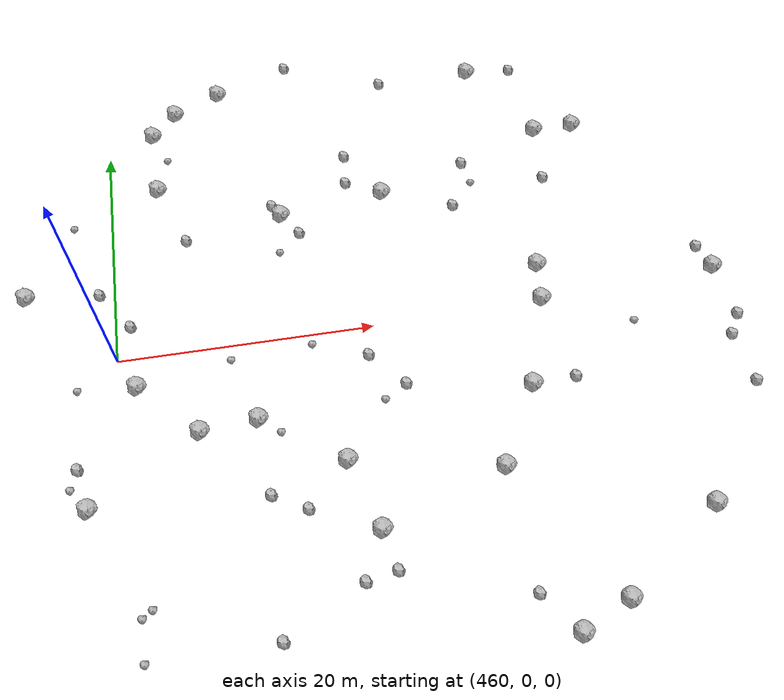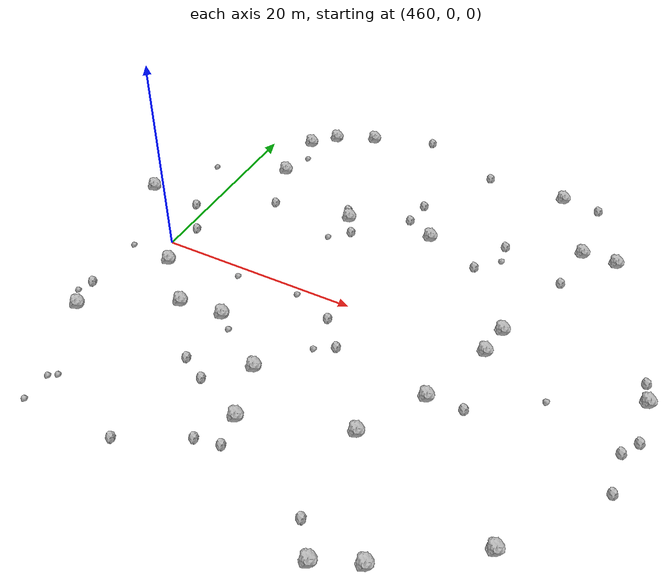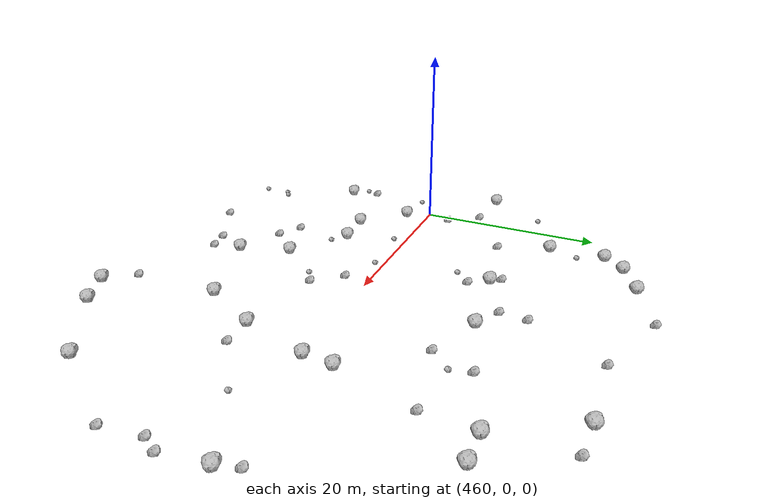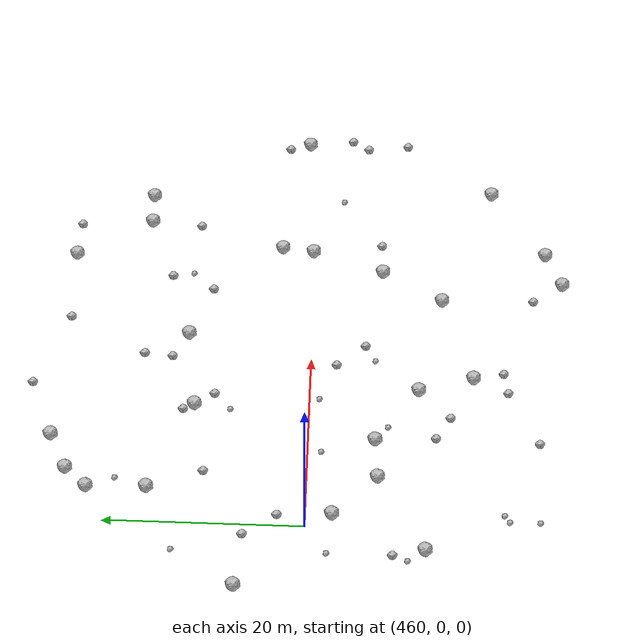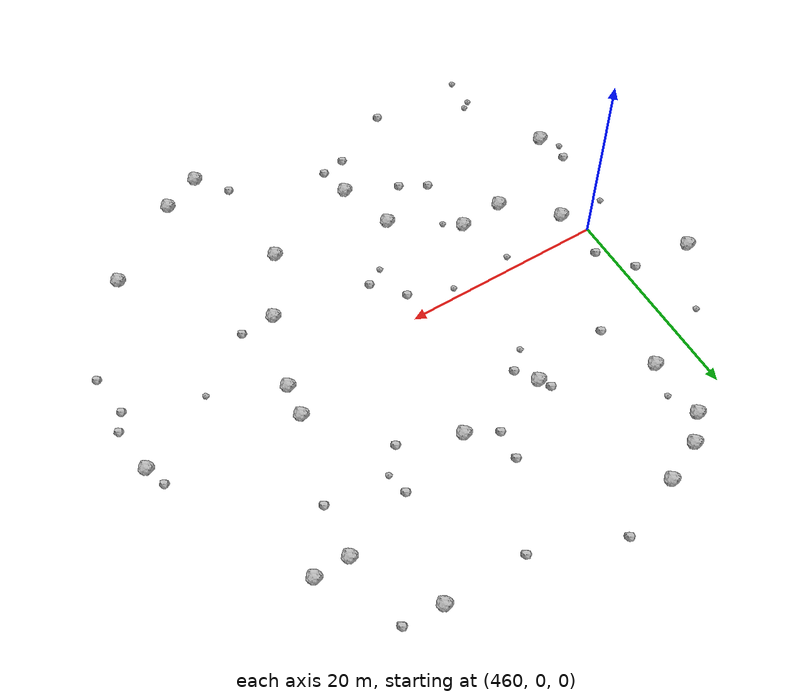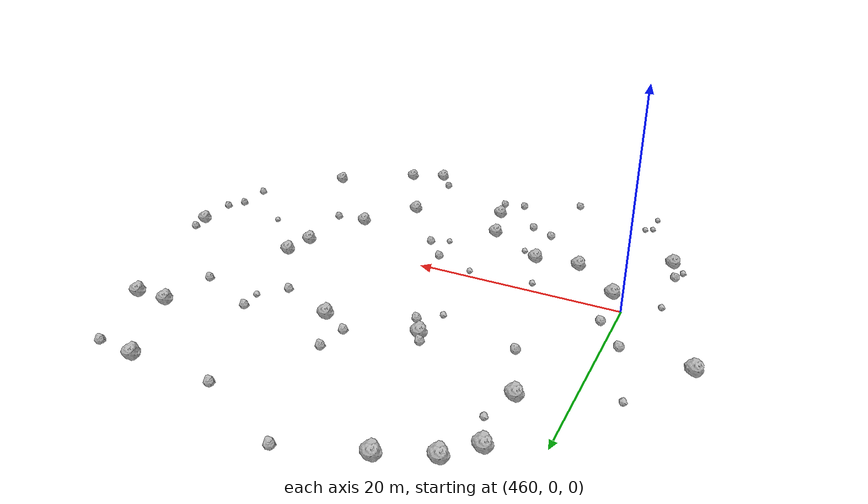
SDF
<sdf version="1.6">
 <world name="default">
  <include><uri>model://sun</uri></include>
  <model name="rock1_12_3">
   <include><uri>model://rock1</uri><pose>469.84025646505455 25.83002193237992 0.5 0 0 0</pose></include>
  </model>
  <model name="rock1_12_4">
   <include><uri>model://rock1</uri><pose>508.04774772322935 1.0769543402121826 0.5 0 0 0</pose></include>
  </model>
  <model name="rock1_12_5">
   <include><uri>model://rock1</uri><pose>465.93030148466664 -6.999274830311265 0.5 0 0 0</pose></include>
  </model>
  <model name="rock1_12_6">
   <include><uri>model://rock1</uri><pose>487.7406702322385 -13.205450569475175 0.5 0 0 0</pose></include>
  </model>
  <model name="rock1_12_7">
   <include><uri>model://rock1</uri><pose>470.32158581752924 -6.6537386510338905 0.5 0 0 0</pose></include>
  </model>
  <model name="rock1_12_8">
   <include><uri>model://rock1</uri><pose>463.9807250823073 15.862697045117748 0.5 0 0 0</pose></include>
  </model>
  <model name="rock1_12_9">
   <include><uri>model://rock1</uri><pose>461.46926224715554 -2.5926224698777354 0.5 0 0 0</pose></include>
  </model>
  <model name="rock1_12_10">
   <include><uri>model://rock1</uri><pose>491.2276827800516 -7.029237928903598 0.5 0 0 0</pose></include>
  </model>
  <model name="rock1_12_11">
   <include><uri>model://rock1</uri><pose>453.04291586335444 6.709037088980814 0.5 0 0 0</pose></include>
  </model>
  <model name="rock1_12_12">
   <include><uri>model://rock1</uri><pose>457.63041846325643 -11.815308560376021 0.5 0 0 0</pose></include>
  </model>
  <model name="rock1_12_13">
   <include><uri>model://rock1</uri><pose>465.929581305238 24.05255874428559 0.5 0 0 0</pose></include>
  </model>
  <model name="rock1_12_14">
   <include><uri>model://rock1</uri><pose>501.92446683193845 -18.336502039397878 0.5 0 0 0</pose></include>
  </model>
  <model name="rock1_12_15">
   <include><uri>model://rock1</uri><pose>494.0157162682196 -23.941621341951304 0.5 0 0 0</pose></include>
  </model>
  <model name="rock1_12_16">
   <include><uri>model://rock1</uri><pose>493.6394447054761 0.26569884352060313 0.5 0 0 0</pose></include>
  </model>
  <model name="rock1_12_17">
   <include><uri>model://rock1</uri><pose>492.53463100734945 24.969012748857928 0.5 0 0 0</pose></include>
  </model>
  <model name="rock1_12_18">
   <include><uri>model://rock1</uri><pose>476.4474159134731 -10.942592302541474 0.5 0 0 0</pose></include>
  </model>
  <model name="rock1_12_19">
   <include><uri>model://rock1</uri><pose>482.69971278971695 12.66241007000231 0.5 0 0 0</pose></include>
  </model>
  <model name="rock1_12_20">
   <include><uri>model://rock1</uri><pose>500.4865253010963 17.39529354418282 0.5 0 0 0</pose></include>
  </model>
  <model name="rock1_12_21">
   <include><uri>model://rock1</uri><pose>478.109237638952 -16.479279917750482 0.5 0 0 0</pose></include>
  </model>
  <model name="rock1_12_22">
   <include><uri>model://rock1</uri><pose>474.01146726450213 11.646021132460994 0.5 0 0 0</pose></include>
  </model>
  <model name="rock1_12_23">
   <include><uri>model://rock1</uri><pose>490.22978102926265 -25.642081010096632 0.5 0 0 0</pose></include>
  </model>
  <model name="rock1_12_24">
   <include><uri>model://rock1</uri><pose>497.0710489271918 17.34959557225651 0.5 0 0 0</pose></include>
  </model>
  <model name="rock1_12_25">
   <include><uri>model://rock1</uri><pose>463.85138274092714 21.851285827358645 0.5 0 0 0</pose></include>
  </model>
  <model name="rock1_12_26">
   <include><uri>model://rock1</uri><pose>494.03715725747264 3.4871545838889233 0.5 0 0 0</pose></include>
  </model>
  <model name="rock2_12_0">
   <include><uri>model://rock2</uri><pose>476.36161673223086 -20.007959608755673 0.3 0 0 0</pose></include>
  </model>
  <model name="rock2_12_1">
   <include><uri>model://rock2</uri><pose>470.3322718134397 -23.134144727401107 0.3 0 0 0</pose></include>
  </model>
  <model name="rock2_12_2">
   <include><uri>model://rock2</uri><pose>481.69822478450806 -5.454732438542429 0.3 0 0 0</pose></include>
  </model>
  <model name="rock2_12_3">
   <include><uri>model://rock2</uri><pose>489.99048182186783 14.771923376629935 0.3 0 0 0</pose></include>
  </model>
  <model name="rock2_12_4">
   <include><uri>model://rock2</uri><pose>507.58185039071617 -5.2113502411306705 0.3 0 0 0</pose></include>
  </model>
  <model name="rock2_12_5">
   <include><uri>model://rock2</uri><pose>473.14377958815686 -14.197645728090393 0.3 0 0 0</pose></include>
  </model>
  <model name="rock2_12_6">
   <include><uri>model://rock2</uri><pose>476.0588493641384 28.164580805640796 0.3 0 0 0</pose></include>
  </model>
  <model name="rock2_12_7">
   <include><uri>model://rock2</uri><pose>479.7924576000152 14.196998451444308 0.3 0 0 0</pose></include>
  </model>
  <model name="rock2_12_8">
   <include><uri>model://rock2</uri><pose>470.6140562782386 -12.757945996452985 0.3 0 0 0</pose></include>
  </model>
  <model name="rock2_12_9">
   <include><uri>model://rock2</uri><pose>480.06927585512153 17.061729366875426 0.3 0 0 0</pose></include>
  </model>
  <model name="rock2_12_10">
   <include><uri>model://rock2</uri><pose>496.41734417807373 24.726153432061167 0.3 0 0 0</pose></include>
  </model>
  <model name="rock2_12_11">
   <include><uri>model://rock2</uri><pose>465.994848393795 10.326428950542784 0.3 0 0 0</pose></include>
  </model>
  <model name="rock2_12_12">
   <include><uri>model://rock2</uri><pose>496.58547401063527 12.154318245061312 0.3 0 0 0</pose></include>
  </model>
  <model name="rock2_12_13">
   <include><uri>model://rock2</uri><pose>475.2902671727141 9.662521367942311 0.3 0 0 0</pose></include>
  </model>
  <model name="rock2_12_14">
   <include><uri>model://rock2</uri><pose>478.71022220791167 -19.55889625566507 0.3 0 0 0</pose></include>
  </model>
  <model name="rock2_12_15">
   <include><uri>model://rock2</uri><pose>479.25324399839525 -2.562534786499789 0.3 0 0 0</pose></include>
  </model>
  <model name="rock2_12_16">
   <include><uri>model://rock2</uri><pose>508.60303208952604 -3.4950755371799644 0.3 0 0 0</pose></include>
  </model>
  <model name="rock2_12_17">
   <include><uri>model://rock2</uri><pose>508.10675672814557 -9.395565715785587 0.3 0 0 0</pose></include>
  </model>
  <model name="rock2_12_18">
   <include><uri>model://rock2</uri><pose>458.8177177264473 6.129359463621981 0.3 0 0 0</pose></include>
  </model>
  <model name="rock2_12_19">
   <include><uri>model://rock2</uri><pose>484.38757843985627 24.905180197605006 0.3 0 0 0</pose></include>
  </model>
  <model name="rock2_12_20">
   <include><uri>model://rock2</uri><pose>488.4000184560084 10.455060750470189 0.3 0 0 0</pose></include>
  </model>
  <model name="rock2_12_21">
   <include><uri>model://rock2</uri><pose>494.6072712377977 -6.879828684557083 0.3 0 0 0</pose></include>
  </model>
  <model name="rock2_12_22">
   <include><uri>model://rock2</uri><pose>456.8996188925241 -8.626690107586278 0.3 0 0 0</pose></include>
  </model>
  <model name="rock2_12_23">
   <include><uri>model://rock2</uri><pose>473.33953282943236 12.756684171167691 0.3 0 0 0</pose></include>
  </model>
  <model name="rock2_12_24">
   <include><uri>model://rock2</uri><pose>487.9325379493994 -22.642928455877204 0.3 0 0 0</pose></include>
  </model>
  <model name="rock2_12_25">
   <include><uri>model://rock2</uri><pose>461.1497329699906 2.8062747376311137 0.3 0 0 0</pose></include>
  </model>
  <model name="rock2_12_26">
   <include><uri>model://rock2</uri><pose>507.3451781451431 3.18477380655294 0.3 0 0 0</pose></include>
  </model>
  <model name="rock3_12_0">
   <include><uri>model://rock3</uri><pose>490.3773805436492 12.584491795721142 0.2 0 0 0</pose></include>
  </model>
  <model name="rock3_12_1">
   <include><uri>model://rock3</uri><pose>479.9144345702737 -6.532971460511263 0.2 0 0 0</pose></include>
  </model>
  <model name="rock3_12_2">
   <include><uri>model://rock3</uri><pose>468.6860142771105 -1.352448340471092 0.2 0 0 0</pose></include>
  </model>
  <model name="rock3_12_3">
   <include><uri>model://rock3</uri><pose>471.85186299617885 -7.966457852539005 0.2 0 0 0</pose></include>
  </model>
  <model name="rock3_12_4">
   <include><uri>model://rock3</uri><pose>456.93245756860586 -2.2088541006077627 0.2 0 0 0</pose></include>
  </model>
  <model name="rock3_12_5">
   <include><uri>model://rock3</uri><pose>464.913951392727 19.013255242522163 0.2 0 0 0</pose></include>
  </model>
  <model name="rock3_12_6">
   <include><uri>model://rock3</uri><pose>475.0363197393903 -0.9708687964843072 0.2 0 0 0</pose></include>
  </model>
  <model name="rock3_12_7">
   <include><uri>model://rock3</uri><pose>461.81499365767877 -19.62491855370724 0.2 0 0 0</pose></include>
  </model>
  <model name="rock3_12_8">
   <include><uri>model://rock3</uri><pose>461.0827623536471 -20.128523819980174 0.2 0 0 0</pose></include>
  </model>
  <model name="rock3_12_9">
   <include><uri>model://rock3</uri><pose>456.8553133403744 12.975313350493664 0.2 0 0 0</pose></include>
  </model>
  <model name="rock3_12_10">
   <include><uri>model://rock3</uri><pose>461.11071145330465 -23.13110220773721 0.2 0 0 0</pose></include>
  </model>
  <model name="rock3_12_11">
   <include><uri>model://rock3</uri><pose>500.3795343673178 -2.8062923715849273 0.2 0 0 0</pose></include>
  </model>
  <model name="rock3_12_12">
   <include><uri>model://rock3</uri><pose>456.32861658380085 -10.139922709532655 0.2 0 0 0</pose></include>
  </model>
  <model name="rock3_12_13">
   <include><uri>model://rock3</uri><pose>473.49479615137255 7.966191332930869 0.2 0 0 0</pose></include>
  </model>
 </world>
</sdf>
